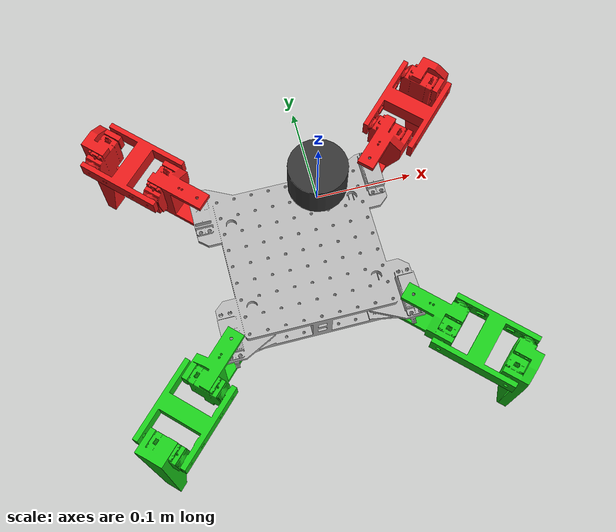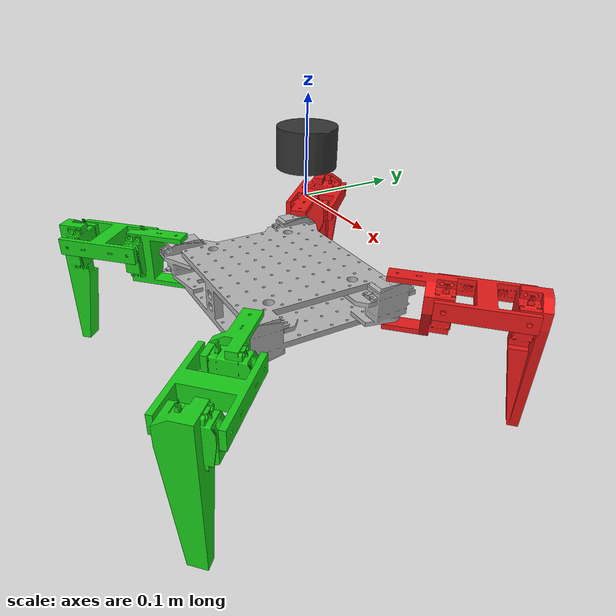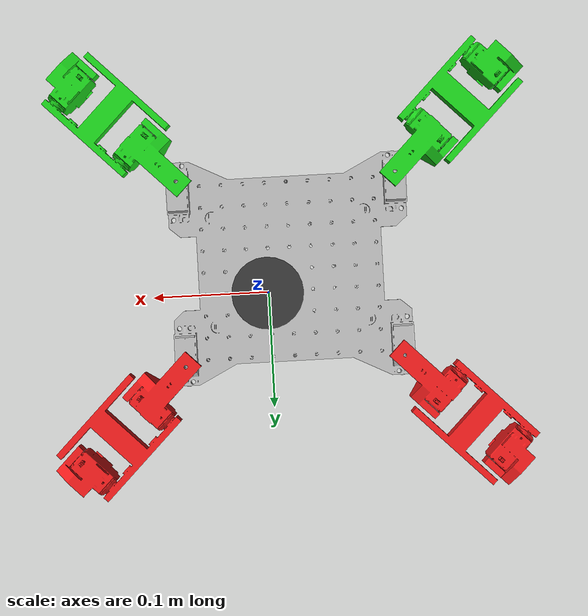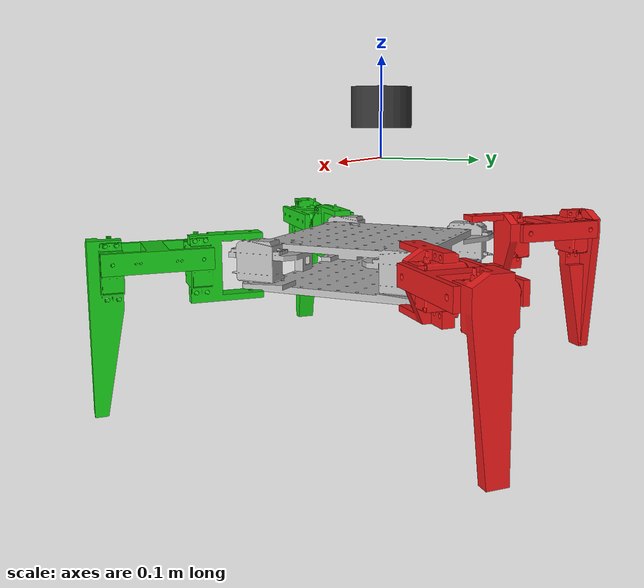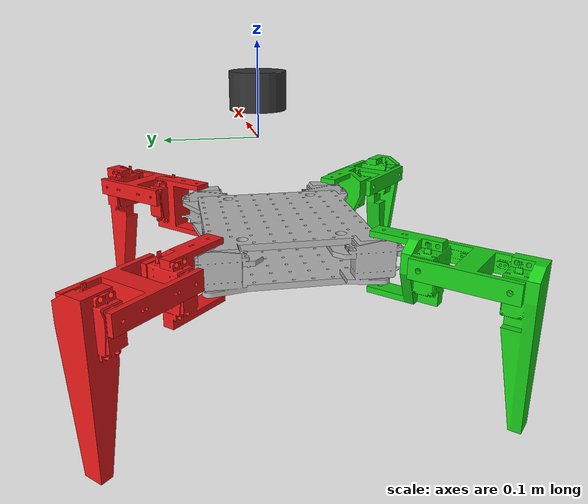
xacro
<?xml version="1.0" ?>
<robot name="spiderbot" xmlns:xacro="http://www.ros.org/wiki/xacro">
  <!-- Added by ChatGPT: leg color materials -->
  <material name="front_green">
    <color rgba="0.1 0.8 0.1 1.0"/>
  </material>
  <material name="rear_red">
    <color rgba="0.9 0.1 0.1 1.0"/>
  </material>

<!-- MATERIALS -->
<material name="silver">
  <color rgba="0.700 0.700 0.700 1.000"/>
</material>

<material name="black">
  <color rgba="0.2 0.2 0.2 1.0"/>
</material>

<!-- BASE LINK -->
<link name="base_link">
  <inertial>
    <origin xyz="-0.019978371341620418 -0.020000000835769374 -0.10495599955384616" rpy="0 0 0"/>
    <mass value="4.731408299822953"/>
    <inertia ixx="0.018448" iyy="0.023393" izz="0.038341" ixy="7e-06" iyz="0.0" ixz="2e-06"/>
  </inertial>
  <visual>
    <origin xyz="0 0 0" rpy="0 0 0"/>
    <geometry>
      <mesh filename="package://spiderbot_description/meshes/base_link.stl" scale="0.001 0.001 0.001"/>
    </geometry>
    <material name="silver"/>
  </visual>
  <collision>
    <origin xyz="0 0 0" rpy="0 0 0"/>
    <geometry>
      <mesh filename="package://spiderbot_description/meshes/base_link.stl" scale="0.001 0.001 0.001"/>
    </geometry>
  </collision>
</link>

<!-- FRONT LEFT LEG -->
<link name="fl_coxa_link">
  <inertial>
    <origin xyz="0.028135954876008673 -0.029329745571449628 -0.028119170695013032" rpy="0 0 0"/>
    <mass value="0.542887385601251"/>
    <inertia ixx="0.000264" iyy="0.000279" izz="0.00019" ixy="3e-05" iyz="1e-05" ixz="1e-06"/>
  </inertial>
  <visual>
    <origin xyz="-0.0802 0.1049 0.0717" rpy="0 0 0"/>
    <geometry>
      <mesh filename="package://spiderbot_description/meshes/coxa_FL_1.stl" scale="0.001 0.001 0.001"/>
    </geometry>
    <material name="front_green"/>
  </visual>
  <collision>
    <origin xyz="-0.0802 0.1049 0.0717" rpy="0 0 0"/>
    <geometry>
      <mesh filename="package://spiderbot_description/meshes/coxa_FL_1.stl" scale="0.001 0.001 0.001"/>
    </geometry>
  </collision>
</link>

<link name="fl_femur_link">
  <inertial>
    <origin xyz="0.006997567200805632 -0.04957052602340402 -7.856501144098971e-10" rpy="0 0 0"/>
    <mass value="0.3492287921483335"/>
    <inertia ixx="0.000188" iyy="0.000188" izz="0.000352" ixy="-1.9e-05" iyz="-0.0" ixz="0.0"/>
  </inertial>
  <visual>
    <origin xyz="-0.135496 0.120881 0.0888" rpy="0 0 0"/>
    <geometry>
      <mesh filename="package://spiderbot_description/meshes/femur_FL_1.stl" scale="0.001 0.001 0.001"/>
    </geometry>
    <material name="front_green"/>
  </visual>
  <collision>
    <origin xyz="-0.135496 0.120881 0.0888" rpy="0 0 0"/>
    <geometry>
      <mesh filename="package://spiderbot_description/meshes/femur_FL_1.stl" scale="0.001 0.001 0.001"/>
    </geometry>
  </collision>
</link>

<link name="fl_tibia_link">
  <inertial>
    <origin xyz="-0.015570071022172616 -0.025956642235597044 -0.04429277038724115" rpy="0 0 0"/>
    <mass value="0.8577979430954783"/>
    <inertia ixx="0.0017" iyy="0.001667" izz="0.000147" ixy="-1.3e-05" iyz="-6.5e-05" ixz="7.6e-05"/>
  </inertial>
  <visual>
    <origin xyz="-0.192064 0.177449 0.0888" rpy="0 0 0"/>
    <geometry>
      <mesh filename="package://spiderbot_description/meshes/tibia_FL_1.stl" scale="0.001 0.001 0.001"/>
    </geometry>
    <material name="front_green"/>
  </visual>
  <collision>
    <origin xyz="-0.192064 0.177449 0.0888" rpy="0 0 0"/>
    <geometry>
      <mesh filename="package://spiderbot_description/meshes/tibia_FL_1.stl" scale="0.001 0.001 0.001"/>
    </geometry>
  </collision>
</link>

<!-- FRONT RIGHT LEG -->
<link name="fr_coxa_link">
  <inertial>
    <origin xyz="-0.029329745571448573 -0.028135954876009714 -0.028119170695013046" rpy="0 0 0"/>
    <mass value="0.542887385601251"/>
    <inertia ixx="0.000279" iyy="0.000264" izz="0.00019" ixy="-3e-05" iyz="-1e-06" ixz="1e-05"/>
  </inertial>
  <visual>
    <origin xyz="0.1202 0.10365 0.07235" rpy="0 0 0"/>
    <geometry>
      <mesh filename="package://spiderbot_description/meshes/coxa_FR_1.stl" scale="0.001 0.001 0.001"/>
    </geometry>
    <material name="front_green"/>
  </visual>
  <collision>
    <origin xyz="0.1202 0.10365 0.07235" rpy="0 0 0"/>
    <geometry>
      <mesh filename="package://spiderbot_description/meshes/coxa_FR_1.stl" scale="0.001 0.001 0.001"/>
    </geometry>
  </collision>
</link>

<link name="fr_femur_link">
  <inertial>
    <origin xyz="-0.048509678665941525 -0.008058040186904758 7.856502393099873e-10" rpy="0 0 0"/>
    <mass value="0.3492287921483335"/>
    <inertia ixx="0.000188" iyy="0.000188" izz="0.000352" ixy="1.9e-05" iyz="-0.0" ixz="-0.0"/>
  </inertial>
  <visual>
    <origin xyz="0.136181 0.158946 0.08945" rpy="0 0 0"/>
    <geometry>
      <mesh filename="package://spiderbot_description/meshes/femur_FR_1.stl" scale="0.001 0.001 0.001"/>
    </geometry>
    <material name="front_green"/>
  </visual>
  <collision>
    <origin xyz="0.136181 0.158946 0.08945" rpy="0 0 0"/>
    <geometry>
      <mesh filename="package://spiderbot_description/meshes/femur_FR_1.stl" scale="0.001 0.001 0.001"/>
    </geometry>
  </collision>
</link>

<link name="fr_tibia_link">
  <inertial>
    <origin xyz="-0.025956982063816164 0.015570410850391847 -0.04429277038724089" rpy="0 0 0"/>
    <mass value="0.8577979430954783"/>
    <inertia ixx="0.001667" iyy="0.0017" izz="0.000147" ixy="1.3e-05" iyz="-7.6e-05" ixz="-6.5e-05"/>
  </inertial>
  <visual>
    <origin xyz="0.191688 0.216575 0.08945" rpy="0 0 0"/>
    <geometry>
      <mesh filename="package://spiderbot_description/meshes/tibia_FR_1.stl" scale="0.001 0.001 0.001"/>
    </geometry>
    <material name="front_green"/>
  </visual>
  <collision>
    <origin xyz="0.191688 0.216575 0.08945" rpy="0 0 0"/>
    <geometry>
      <mesh filename="package://spiderbot_description/meshes/tibia_FR_1.stl" scale="0.001 0.001 0.001"/>
    </geometry>
  </collision>
</link>

<!-- REAR LEFT LEG -->
<link name="rl_coxa_link">
  <inertial>
    <origin xyz="0.029329745571448476 0.028135954876009367 -0.028119170695013004" rpy="0 0 0"/>
    <mass value="0.542887385601251"/>
    <inertia ixx="0.000279" iyy="0.000264" izz="0.00019" ixy="-3e-05" iyz="1e-06" ixz="-1e-05"/>
  </inertial>
  <visual>
    <origin xyz="-0.0802 -0.0649 0.0717" rpy="0 0 0"/>
    <geometry>
      <mesh filename="package://spiderbot_description/meshes/coxa_RL_1.stl" scale="0.001 0.001 0.001"/>
    </geometry>
    <material name="rear_red"/>
  </visual>
  <collision>
    <origin xyz="-0.0802 -0.0649 0.0717" rpy="0 0 0"/>
    <geometry>
      <mesh filename="package://spiderbot_description/meshes/coxa_RL_1.stl" scale="0.001 0.001 0.001"/>
    </geometry>
  </collision>
</link>

<link name="rl_femur_link">
  <inertial>
    <origin xyz="0.049570338837721176 0.006997380015124621 7.856499478764434e-10" rpy="0 0 0"/>
    <mass value="0.3492287921483335"/>
    <inertia ixx="0.000188" iyy="0.000188" izz="0.000352" ixy="1.9e-05" iyz="0.0" ixz="0.0"/>
  </inertial>
  <visual>
    <origin xyz="-0.096181 -0.120196 0.0888" rpy="0 0 0"/>
    <geometry>
      <mesh filename="package://spiderbot_description/meshes/femur_RL_1.stl" scale="0.001 0.001 0.001"/>
    </geometry>
    <material name="rear_red"/>
  </visual>
  <collision>
    <origin xyz="-0.096181 -0.120196 0.0888" rpy="0 0 0"/>
    <geometry>
      <mesh filename="package://spiderbot_description/meshes/femur_RL_1.stl" scale="0.001 0.001 0.001"/>
    </geometry>
  </collision>
</link>

<link name="rl_tibia_link">
  <inertial>
    <origin xyz="0.025956642235595767 -0.01557007102217195 -0.04429277038724118" rpy="0 0 0"/>
    <mass value="0.8577979430954783"/>
    <inertia ixx="0.001667" iyy="0.0017" izz="0.000147" ixy="1.3e-05" iyz="7.6e-05" ixz="6.5e-05"/>
  </inertial>
  <visual>
    <origin xyz="-0.152749 -0.176764 0.0888" rpy="0 0 0"/>
    <geometry>
      <mesh filename="package://spiderbot_description/meshes/tibia_RL_1.stl" scale="0.001 0.001 0.001"/>
    </geometry>
    <material name="rear_red"/>
  </visual>
  <collision>
    <origin xyz="-0.152749 -0.176764 0.0888" rpy="0 0 0"/>
    <geometry>
      <mesh filename="package://spiderbot_description/meshes/tibia_RL_1.stl" scale="0.001 0.001 0.001"/>
    </geometry>
  </collision>
</link>

<!-- REAR RIGHT LEG -->
<link name="rr_coxa_link">
  <inertial>
    <origin xyz="-0.028135954876008396 0.029329745571449795 -0.02661917069501303" rpy="0 0 0"/>
    <mass value="0.542887385601251"/>
    <inertia ixx="0.000264" iyy="0.000279" izz="0.00019" ixy="3e-05" iyz="-1e-05" ixz="-1e-06"/>
  </inertial>
  <visual>
    <origin xyz="0.1202 -0.0649 0.0717" rpy="0 0 0"/>
    <geometry>
      <mesh filename="package://spiderbot_description/meshes/coxa_RR_1.stl" scale="0.001 0.001 0.001"/>
    </geometry>
    <material name="rear_red"/>
  </visual>
  <collision>
    <origin xyz="0.1202 -0.0649 0.0717" rpy="0 0 0"/>
    <geometry>
      <mesh filename="package://spiderbot_description/meshes/coxa_RR_1.stl" scale="0.001 0.001 0.001"/>
    </geometry>
  </collision>
</link>

<link name="rr_femur_link">
  <inertial>
    <origin xyz="-0.006997380015123622 0.04957033883772251 7.856499617542312e-10" rpy="0 0 0"/>
    <mass value="0.3492287921483335"/>
    <inertia ixx="0.000188" iyy="0.000188" izz="0.000352" ixy="-1.9e-05" iyz="0.0" ixz="-0.0"/>
  </inertial>
  <visual>
    <origin xyz="0.175496 -0.080881 0.0873" rpy="0 0 0"/>
    <geometry>
      <mesh filename="package://spiderbot_description/meshes/femur_RR_1.stl" scale="0.001 0.001 0.001"/>
    </geometry>
    <material name="rear_red"/>
  </visual>
  <collision>
    <origin xyz="0.175496 -0.080881 0.0873" rpy="0 0 0"/>
    <geometry>
      <mesh filename="package://spiderbot_description/meshes/femur_RR_1.stl" scale="0.001 0.001 0.001"/>
    </geometry>
  </collision>
</link>

<link name="rr_tibia_link">
  <inertial>
    <origin xyz="0.015570071022172893 0.025956642235597266 -0.044292770387241207" rpy="0 0 0"/>
    <mass value="0.8577979430954783"/>
    <inertia ixx="0.0017" iyy="0.001667" izz="0.000147" ixy="-1.3e-05" iyz="6.5e-05" ixz="-7.6e-05"/>
  </inertial>
  <visual>
    <origin xyz="0.232064 -0.137449 0.0873" rpy="0 0 0"/>
    <geometry>
      <mesh filename="package://spiderbot_description/meshes/tibia_RR_1.stl" scale="0.001 0.001 0.001"/>
    </geometry>
    <material name="rear_red"/>
  </visual>
  <collision>
    <origin xyz="0.232064 -0.137449 0.0873" rpy="0 0 0"/>
    <geometry>
      <mesh filename="package://spiderbot_description/meshes/tibia_RR_1.stl" scale="0.001 0.001 0.001"/>
    </geometry>
  </collision>
</link>

<!-- JOINTS - FRONT LEFT LEG -->
<joint name="fl_coxa_joint" type="revolute">
  <origin xyz="0.0802 -0.1049 -0.0717" rpy="0 0 0"/>
  <parent link="base_link"/>
  <child link="fl_coxa_link"/>
  <axis xyz="-0.0 -0.0 1.0"/>
  <limit upper="1.570796" lower="-1.570796" effort="100" velocity="10"/>
  <dynamics damping="0.1" friction="0.1"/>
</joint>

<joint name="fl_femur_joint" type="revolute">
  <origin xyz="0.055296 -0.015981 -0.0171" rpy="0 0 0"/>
  <parent link="fl_coxa_link"/>
  <child link="fl_femur_link"/>
  <axis xyz="0.707107 0.707107 -0.0"/>
  <limit upper="1.570796" lower="-1.570796" effort="100" velocity="10"/>
  <dynamics damping="0.1" friction="0.1"/>
</joint>

<joint name="fl_tibia_joint" type="revolute">
  <origin xyz="0.056568 -0.056568 0.0" rpy="0 0 0"/>
  <parent link="fl_femur_link"/>
  <child link="fl_tibia_link"/>
  <axis xyz="0.707107 0.707107 0.0"/>
  <limit upper="1.570796" lower="-1.570796" effort="100" velocity="10"/>
  <dynamics damping="0.1" friction="0.1"/>
</joint>

<!-- JOINTS - FRONT RIGHT LEG -->
<joint name="fr_coxa_joint" type="revolute">
  <origin xyz="-0.1202 -0.10365 -0.07235" rpy="0 0 0"/>
  <parent link="base_link"/>
  <child link="fr_coxa_link"/>
  <axis xyz="0.0 0.0 1.0"/>
  <limit upper="1.570796" lower="-1.570796" effort="100" velocity="10"/>
  <dynamics damping="0.1" friction="0.1"/>
</joint>

<joint name="fr_femur_joint" type="revolute">
  <origin xyz="-0.015981 -0.055296 -0.0171" rpy="0 0 0"/>
  <parent link="fr_coxa_link"/>
  <child link="fr_femur_link"/>
  <axis xyz="0.707107 -0.707107 -0.0"/>
  <limit upper="1.570796" lower="-1.570796" effort="100" velocity="10"/>
  <dynamics damping="0.1" friction="0.1"/>
</joint>

<joint name="fr_tibia_joint" type="revolute">
  <origin xyz="-0.055507 -0.057629 0.0" rpy="0 0 0"/>
  <parent link="fr_femur_link"/>
  <child link="fr_tibia_link"/>
  <axis xyz="0.707107 -0.707107 -0.0"/>
  <limit upper="1.570796" lower="-1.570796" effort="100" velocity="10"/>
  <dynamics damping="0.1" friction="0.1"/>
</joint>

<!-- JOINTS - REAR LEFT LEG -->
<joint name="rl_coxa_joint" type="revolute">
  <origin xyz="0.0802 0.0649 -0.0717" rpy="0 0 0"/>
  <parent link="base_link"/>
  <child link="rl_coxa_link"/>
  <axis xyz="0.0 -0.0 1.0"/>
  <limit upper="1.570796" lower="-1.570796" effort="100" velocity="10"/>
  <dynamics damping="0.1" friction="0.1"/>
</joint>

<joint name="rl_femur_joint" type="revolute">
  <origin xyz="0.015981 0.055296 -0.0171" rpy="0 0 0"/>
  <parent link="rl_coxa_link"/>
  <child link="rl_femur_link"/>
  <axis xyz="-0.707107 0.707107 0.0"/>
  <limit upper="1.570796" lower="-1.570796" effort="100" velocity="10"/>
  <dynamics damping="0.1" friction="0.1"/>
</joint>

<joint name="rl_tibia_joint" type="revolute">
  <origin xyz="0.056568 0.056568 0.0" rpy="0 0 0"/>
  <parent link="rl_femur_link"/>
  <child link="rl_tibia_link"/>
  <axis xyz="-0.707107 0.707107 0.0"/>
  <limit upper="1.570796" lower="-1.570796" effort="100" velocity="10"/>
  <dynamics damping="0.1" friction="0.1"/>
</joint>

<!-- JOINTS - REAR RIGHT LEG -->
<joint name="rr_coxa_joint" type="revolute">
  <origin xyz="-0.1202 0.0649 -0.0717" rpy="0 0 0"/>
  <parent link="base_link"/>
  <child link="rr_coxa_link"/>
  <axis xyz="0.0 0.0 1.0"/>
  <limit upper="1.570796" lower="-1.570796" effort="100" velocity="10"/>
  <dynamics damping="0.1" friction="0.1"/>
</joint>

<joint name="rr_femur_joint" type="revolute">
  <origin xyz="-0.055296 0.015981 -0.0156" rpy="0 0 0"/>
  <parent link="rr_coxa_link"/>
  <child link="rr_femur_link"/>
  <axis xyz="-0.707107 -0.707107 0.0"/>
  <limit upper="1.570796" lower="-1.570796" effort="100" velocity="10"/>
  <dynamics damping="0.1" friction="0.1"/>
</joint>

<joint name="rr_tibia_joint" type="revolute">
  <origin xyz="-0.056568 0.056568 0.0" rpy="0 0 0"/>
  <parent link="rr_femur_link"/>
  <child link="rr_tibia_link"/>
  <axis xyz="-0.707107 -0.707107 -0.0"/>
  <limit upper="1.570796" lower="-1.570796" effort="100" velocity="10"/>
  <dynamics damping="0.1" friction="0.1"/>
</joint>

<!-- ROS2_CONTROL CONFIGURATION -->
<!-- This replaces the old transmission system -->
<ros2_control name="SpiderHW" type="system">
  <hardware>
    <!-- Ignition Fortress ros2_control backend -->
    <plugin>ign_ros2_control/IgnitionSystem</plugin>
  </hardware>

  <!-- Front Left Leg -->
  <joint name="fl_coxa_joint">
    <command_interface name="position"/>
    <state_interface name="position"/>
    <state_interface name="velocity"/>
    <state_interface name="effort"/>
  </joint>

  <joint name="fl_femur_joint">
    <command_interface name="position"/>
    <state_interface name="position"/>
    <state_interface name="velocity"/>
    <state_interface name="effort"/>
  </joint>

  <joint name="fl_tibia_joint">
    <command_interface name="position"/>
    <state_interface name="position"/>
    <state_interface name="velocity"/>
    <state_interface name="effort"/>
  </joint>

  <!-- Front Right Leg -->
  <joint name="fr_coxa_joint">
    <command_interface name="position"/>
    <state_interface name="position"/>
    <state_interface name="velocity"/>
    <state_interface name="effort"/>
  </joint>

  <joint name="fr_femur_joint">
    <command_interface name="position"/>
    <state_interface name="position"/>
    <state_interface name="velocity"/>
    <state_interface name="effort"/>
  </joint>

  <joint name="fr_tibia_joint">
    <command_interface name="position"/>
    <state_interface name="position"/>
    <state_interface name="velocity"/>
    <state_interface name="effort"/>
  </joint>

  <!-- Rear Left Leg -->
  <joint name="rl_coxa_joint">
    <command_interface name="position"/>
    <state_interface name="position"/>
    <state_interface name="velocity"/>
    <state_interface name="effort"/>
  </joint>

  <joint name="rl_femur_joint">
    <command_interface name="position"/>
    <state_interface name="position"/>
    <state_interface name="velocity"/>
    <state_interface name="effort"/>
  </joint>

  <joint name="rl_tibia_joint">
    <command_interface name="position"/>
    <state_interface name="position"/>
    <state_interface name="velocity"/>
    <state_interface name="effort"/>
  </joint>

  <!-- Rear Right Leg -->
  <joint name="rr_coxa_joint">
    <command_interface name="position"/>
    <state_interface name="position"/>
    <state_interface name="velocity"/>
    <state_interface name="effort"/>
  </joint>

  <joint name="rr_femur_joint">
    <command_interface name="position"/>
    <state_interface name="position"/>
    <state_interface name="velocity"/>
    <state_interface name="effort"/>
  </joint>

  <joint name="rr_tibia_joint">
    <command_interface name="position"/>
    <state_interface name="position"/>
    <state_interface name="velocity"/>
    <state_interface name="effort"/>
  </joint>
</ros2_control>

<!-- GAZEBO ROS2_CONTROL PLUGIN -->
<gazebo>
  <plugin filename="ign_ros2_control-system"
          name="ign_ros2_control::IgnitionROS2ControlPlugin">
    <parameters>$(find spiderbot_description)/config/controllers.yaml</parameters>
    <robot_param>robot_description</robot_param>
    <robot_param_node>robot_state_publisher</robot_param_node>
    <controller_manager_name>controller_manager</controller_manager_name>
  </plugin>
</gazebo>

<!-- GAZEBO PROPERTIES FOR LINKS -->
<xacro:property name="body_color" value="Gazebo/Silver" />

<gazebo reference="base_link">
  <material>${body_color}</material>
  <mu1>0.5</mu1>
  <mu2>0.5</mu2>
  <selfCollide>false</selfCollide>
  <gravity>true</gravity>
</gazebo>

<!-- Leg properties macro -->
<xacro:macro name="leg_gazebo_properties" params="leg_prefix">
  <gazebo reference="${leg_prefix}_coxa_link">
    <material>${body_color}</material>
    <mu1>0.6</mu1>
    <mu2>0.6</mu2>
    <selfCollide>false</selfCollide>
  </gazebo>

  <gazebo reference="${leg_prefix}_femur_link">
    <material>${body_color}</material>
    <mu1>0.6</mu1>
    <mu2>0.6</mu2>
    <selfCollide>false</selfCollide>
  </gazebo>

  <gazebo reference="${leg_prefix}_tibia_link">
    <material>${body_color}</material>
    <mu1>0.6</mu1>
    <mu2>0.6</mu2>
    <selfCollide>false</selfCollide>
  </gazebo>

</xacro:macro>

<!-- Apply to all legs -->
<xacro:leg_gazebo_properties leg_prefix="fl"/>
<xacro:leg_gazebo_properties leg_prefix="fr"/>
<xacro:leg_gazebo_properties leg_prefix="rl"/>
<xacro:leg_gazebo_properties leg_prefix="rr"/>

<!-- IMU SENSOR -->
<gazebo reference="base_link">
  <sensor name="imu_sensor" type="imu">
    <topic>imu</topic>
    <update_rate>100</update_rate>
    <always_on>1</always_on>
    <visualize>true</visualize>
    <ignition_frame_id>base_link</ignition_frame_id>
    <pose>0 0 0 0 0 0</pose>
    <imu>
      <angular_velocity>
        <x>
          <noise type="gaussian">
            <mean>0.0</mean>
            <stddev>2e-4</stddev>
          </noise>
        </x>
        <y>
          <noise type="gaussian">
            <mean>0.0</mean>
            <stddev>2e-4</stddev>
          </noise>
        </y>
        <z>
          <noise type="gaussian">
            <mean>0.0</mean>
            <stddev>2e-4</stddev>
          </noise>
        </z>
      </angular_velocity>
      <linear_acceleration>
        <x>
          <noise type="gaussian">
            <mean>0.0</mean>
            <stddev>1.7e-2</stddev>
          </noise>
        </x>
        <y>
          <noise type="gaussian">
            <mean>0.0</mean>
            <stddev>1.7e-2</stddev>
          </noise>
        </y>
        <z>
          <noise type="gaussian">
            <mean>0.0</mean>
            <stddev>1.7e-2</stddev>
          </noise>
        </z>
      </linear_acceleration>
    </imu>
    <plugin filename="libignition-gazebo-imu-system.so"
            name="ignition::gazebo::systems::Imu"/>
  </sensor>
</gazebo>
<!-- 2D LIDAR SENSOR -->
<link name="laser_link">
  <inertial>
    <mass value="0.125"/>
    <origin xyz="0 0 0" rpy="0 0 0"/>
    <inertia ixx="0.001" iyy="0.001" izz="0.001"
             ixy="0.0" ixz="0.0" iyz="0.0"/>
  </inertial>

  <visual>
    <origin xyz="0 0 0" rpy="0 0 0"/>
    <geometry>
      <cylinder radius="0.03" length="0.04"/>
    </geometry>
    <material name="black"/>
  </visual>

  <collision>
    <origin xyz="0 0 0" rpy="0 0 0"/>
    <geometry>
      <cylinder radius="0.03" length="0.04"/>
    </geometry>
  </collision>
</link>

<!-- Mount LIDAR on top of base_link -->
<joint name="laser_joint" type="fixed">
  <origin xyz="0.0 0.0 0.05" rpy="0 0 0"/>
  <parent link="base_link"/>
  <child link="laser_link"/>
</joint>

<!-- Gazebo LIDAR Plugin -->
<gazebo reference="laser_link">
  <sensor name="lidar_sensor" type="gpu_lidar">
    <topic>scan</topic>
    <update_rate>10</update_rate>
    <always_on>1</always_on>
    <visualize>true</visualize>
    <ignition_frame_id>laser_link</ignition_frame_id>
    <lidar>
      <scan>
        <horizontal>
          <samples>360</samples>
          <resolution>1.0</resolution>
          <min_angle>-3.14159</min_angle>
          <max_angle>3.14159</max_angle>
        </horizontal>
      </scan>
      <range>
        <min>0.12</min>
        <max>12.0</max>
        <resolution>0.01</resolution>
      </range>
      <noise>
        <type>gaussian</type>
        <mean>0.0</mean>
        <stddev>0.01</stddev>
      </noise>
    </lidar>
  </sensor>
</gazebo>

<!-- GAZEBO SENSORS SYSTEM (CRITICAL FOR IGNITION) -->
<gazebo>
  <plugin filename="ignition-gazebo-sensors-system"
          name="ignition::gazebo::systems::Sensors">
    <render_engine>ogre2</render_engine>
  </plugin>
</gazebo>

</robot>
